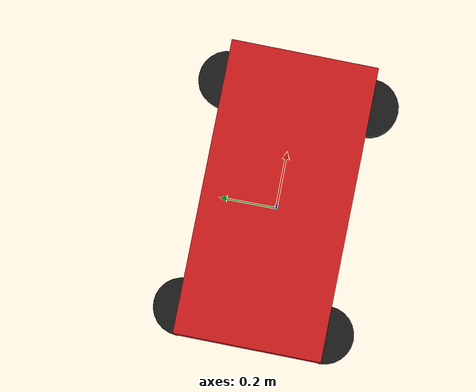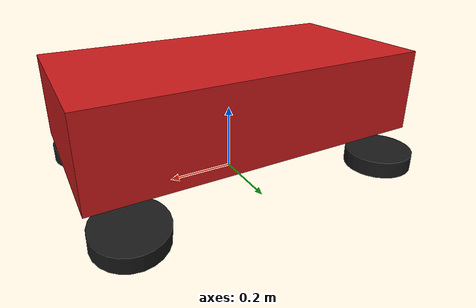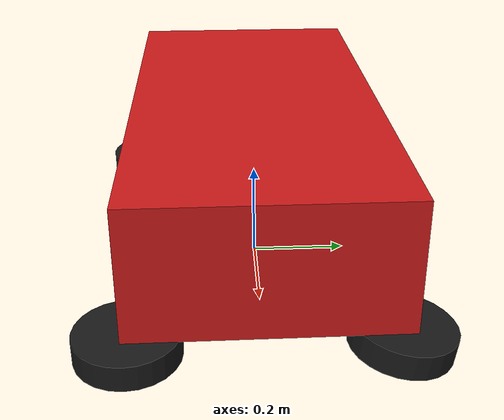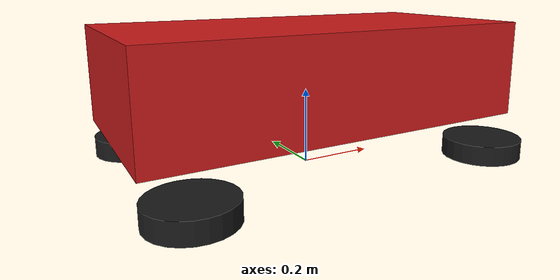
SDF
<?xml version="1.0" ?>
<sdf version="1.7">
  <model name="simple_car">
    <pose>0 0 0 0 0 0</pose>

    <!-- Chassis -->
    <link name="chassis">
      <pose>0 0 0.25 0 0 0</pose>
      <collision name="chassis_collision">
        <geometry>
          <box>
            <size>1.0 0.5 0.25</size>
          </box>
        </geometry>
      </collision>
      <visual name="chassis_visual">
        <geometry>
          <box>
            <size>1.0 0.5 0.25</size>
          </box>
        </geometry>
        <material>
          <ambient>0.8 0.1 0.1 1</ambient>
          <diffuse>0.8 0.1 0.1 1</diffuse>
        </material>
      </visual>
      <inertial>
        <mass>2.0</mass>
        <inertia>
          <ixx>0.1</ixx>
          <iyy>0.2</iyy>
          <izz>0.3</izz>
          <ixy>0.0</ixy>
          <ixz>0.0</ixz>
          <iyz>0.0</iyz>
        </inertia>
      </inertial>
    </link>

    <!-- Wheels -->
    <link name="wheel_fl">
      <pose>0.4 0.25 0.05 3 0 0</pose>
      <collision name="wheel_fl_collision">
        <geometry>
          <cylinder>
            <radius>0.1</radius>
            <length>0.05</length>
          </cylinder>
        </geometry>
      </collision>
      <visual name="wheel_fl_visual">
        <geometry>
          <cylinder>
            <radius>0.1</radius>
            <length>0.05</length>
          </cylinder>
        </geometry>
        <material>
          <ambient>0.1 0.1 0.1 1</ambient>
          <diffuse>0.1 0.1 0.1 1</diffuse>
        </material>
      </visual>
      <inertial>
        <mass>0.3</mass>
        <inertia>
          <ixx>0.001</ixx>
          <iyy>0.001</iyy>
          <izz>0.001</izz>
          <ixy>0.0</ixy>
          <ixz>0.0</ixz>
          <iyz>0.0</iyz>
        </inertia>
      </inertial>
    </link>

    <link name="wheel_fr">
      <pose>0.4 -0.25 0.05 0 0 0</pose>
      <collision name="wheel_fr_collision">
        <geometry>
          <cylinder>
            <radius>0.1</radius>
            <length>0.05</length>
          </cylinder>
        </geometry>
      </collision>
      <visual name="wheel_fr_visual">
        <geometry>
          <cylinder>
            <radius>0.1</radius>
            <length>0.05</length>
          </cylinder>
        </geometry>
        <material>
          <ambient>0.1 0.1 0.1 1</ambient>
          <diffuse>0.1 0.1 0.1 1</diffuse>
        </material>
      </visual>
      <inertial>
        <mass>0.3</mass>
        <inertia>
          <ixx>0.001</ixx>
          <iyy>0.001</iyy>
          <izz>0.001</izz>
          <ixy>0.0</ixy>
          <ixz>0.0</ixz>
          <iyz>0.0</iyz>
        </inertia>
      </inertial>
    </link>

    <link name="wheel_rl">
      <pose>-0.4 0.25 0.05 0 0 0</pose>
      <collision name="wheel_rl_collision">
        <geometry>
          <cylinder>
            <radius>0.1</radius>
            <length>0.05</length>
          </cylinder>
        </geometry>
      </collision>
      <visual name="wheel_rl_visual">
        <geometry>
          <cylinder>
            <radius>0.1</radius>
            <length>0.05</length>
          </cylinder>
        </geometry>
        <material>
          <ambient>0.1 0.1 0.1 1</ambient>
          <diffuse>0.1 0.1 0.1 1</diffuse>
        </material>
      </visual>
      <inertial>
        <mass>0.3</mass>
        <inertia>
          <ixx>0.001</ixx>
          <iyy>0.001</iyy>
          <izz>0.001</izz>
          <ixy>0.0</ixy>
          <ixz>0.0</ixz>
          <iyz>0.0</iyz>
        </inertia>
      </inertial>
    </link>

    <link name="wheel_rr">
      <pose>-0.4 -0.25 0.05 0 0 0</pose>
      <collision name="wheel_rr_collision">
        <geometry>
          <cylinder>
            <radius>0.1</radius>
            <length>0.05</length>
          </cylinder>
        </geometry>
      </collision>
      <visual name="wheel_rr_visual">
        <geometry>
          <cylinder>
            <radius>0.1</radius>
            <length>0.05</length>
          </cylinder>
        </geometry>
        <material>
          <ambient>0.1 0.1 0.1 1</ambient>
          <diffuse>0.1 0.1 0.1 1</diffuse>
        </material>
      </visual>
      <inertial>
        <mass>0.3</mass>
        <inertia>
          <ixx>0.001</ixx>
          <iyy>0.001</iyy>
          <izz>0.001</izz>
          <ixy>0.0</ixy>
          <ixz>0.0</ixz>
          <iyz>0.0</iyz>
        </inertia>
      </inertial>
    </link>

    <!-- Joints -->
    <joint name="joint_fl" type="revolute">
      <parent>chassis</parent>
      <child>wheel_fl</child>
      <pose>0.4 0.25 0.05 0 0 0</pose>
      <axis>
        <xyz>0 1 0</xyz>
        <limit>
          <lower>-1.5708</lower>
          <upper>1.5708</upper>
        </limit>
      </axis>
    </joint>

    <joint name="joint_fr" type="revolute">
      <parent>chassis</parent>
      <child>wheel_fr</child>
      <pose>0.4 -0.25 0.05 0 0 0</pose>
      <axis>
        <xyz>0 1 0</xyz>
        <limit>
          <lower>-1.5708</lower>
          <upper>1.5708</upper>
        </limit>
      </axis>
    </joint>

    <joint name="joint_rl" type="revolute">
      <parent>chassis</parent>
      <child>wheel_rl</child>
      <pose>-0.4 0.25 0.05 0 0 0</pose>
      <axis>
        <xyz>0 1 0</xyz>
        <limit>
          <lower>-1.5708</lower>
          <upper>1.5708</upper>
        </limit>
      </axis>
    </joint>

    <joint name="joint_rr" type="revolute">
      <parent>chassis</parent>
      <child>wheel_rr</child>
      <pose>-0.4 -0.25 0.05 0 0 0</pose>
      <axis>
        <xyz>0 1 0</xyz>
        <limit>
          <lower>-1.5708</lower>
          <upper>1.5708</upper>
        </limit>
      </axis>
    </joint>
  </model>
</sdf>
